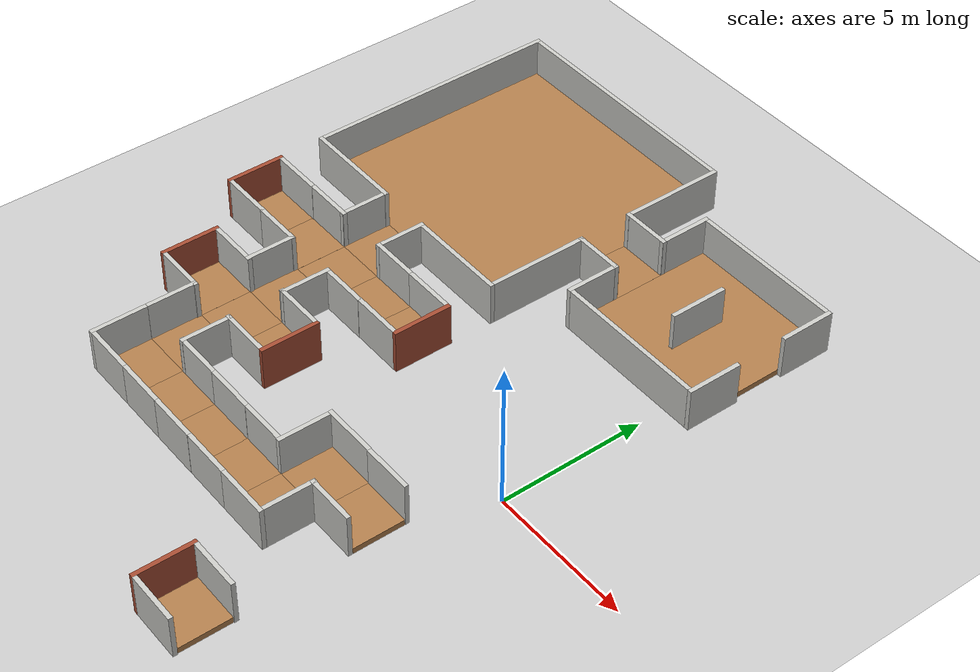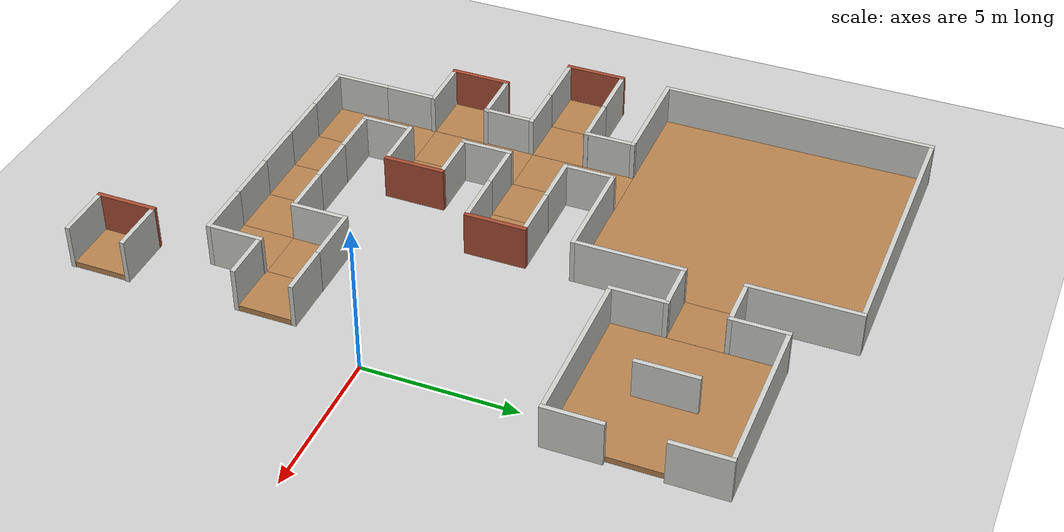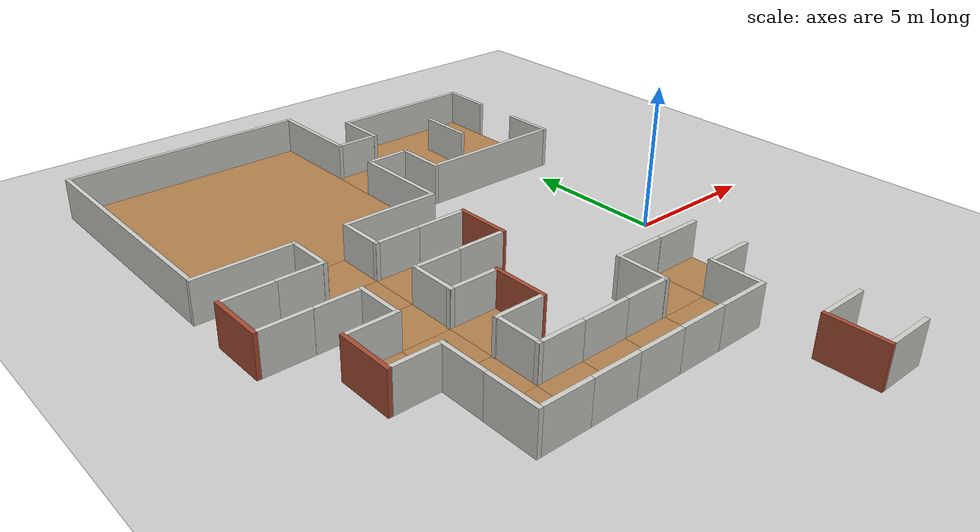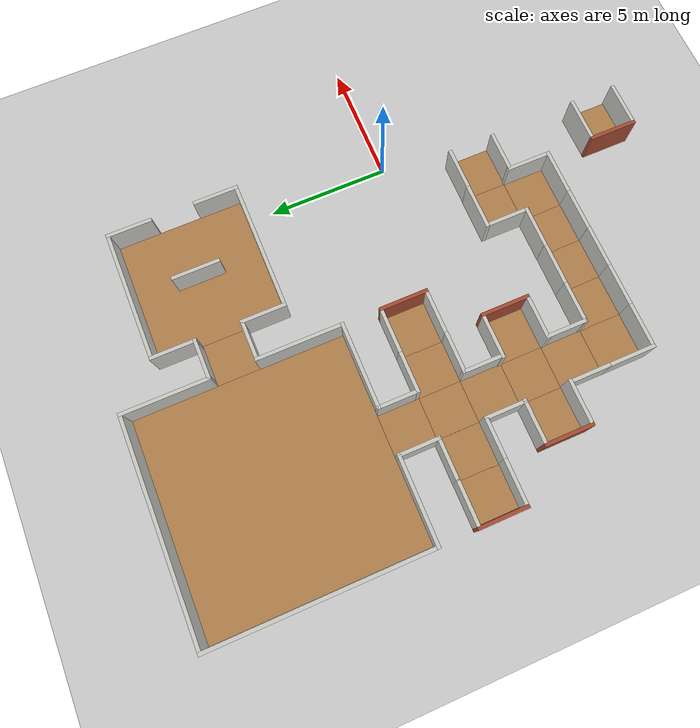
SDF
<sdf version="1.6">
 <world name="default">
  <model name="ground_plane">
   <static>1</static>
   <link name="link">
    <collision name="collision">
     <geometry><plane><normal>0 0 1</normal><size>100 100</size></plane></geometry>
     <surface><friction><ode><mu>100</mu><mu2>50</mu2></ode></friction></surface>
    </collision>
    <visual name="visual">
     <cast_shadows>0</cast_shadows>
     <geometry><plane><normal>0 0 1</normal><size>100 100</size></plane></geometry>
     <material>
      <script><uri>file://media/materials/scripts/gazebo.material</uri><name>Gazebo/Grey</name></script>
     </material>
    </visual>
   </link>
  </model>
  <model name="nerve_straight">
   <pose>-1.7845 -3.55503 0 0 0 -1.5708</pose>
   <link name="Wall_0">
    <collision name="Wall_0_Collision">
     <geometry><box><size>1.76 1.75 0.2</size></box></geometry>
     <pose>0 0 0.1 0 -0 0</pose>
    </collision>
    <visual name="Wall_0_Visual">
     <pose>0 0 0.1 0 -0 0</pose>
     <geometry><box><size>1.76 1.75 0.2</size></box></geometry>
     <material>
      <script><uri>file://media/materials/scripts/gazebo.material</uri><name>Gazebo/Wood</name></script>
      <ambient>1 0.764706 0.305882 1</ambient>
     </material>
    </visual>
    <pose>0.005 -0.002 0 0 -0 3.14159</pose>
   </link>
   <link name="Wall_2">
    <collision name="Wall_2_Collision">
     <geometry><box><size>1.75 0.15 1.5</size></box></geometry>
     <pose>0 0 0.75 0 -0 0</pose>
    </collision>
    <visual name="Wall_2_Visual">
     <pose>0 0 0.75 0 -0 0</pose>
     <geometry><box><size>1.75 0.15 1.5</size></box></geometry>
     <material>
      <script><uri>file://media/materials/scripts/gazebo.material</uri><name>Gazebo/CeilingTiled</name></script>
      <ambient>1 0.764706 0.305882 1</ambient>
     </material>
    </visual>
    <pose>-0.955 0.002 0 0 0 -1.5708</pose>
   </link>
   <link name="Wall_4">
    <collision name="Wall_4_Collision">
     <geometry><box><size>1.75 0.15 1.5</size></box></geometry>
     <pose>0 0 0.75 0 -0 0</pose>
    </collision>
    <visual name="Wall_4_Visual">
     <pose>0 0 0.75 0 -0 0</pose>
     <geometry><box><size>1.75 0.15 1.5</size></box></geometry>
     <material>
      <script><uri>file://media/materials/scripts/gazebo.material</uri><name>Gazebo/CeilingTiled</name></script>
      <ambient>1 0.764706 0.305882 1</ambient>
     </material>
    </visual>
    <pose>0.955 0.002 0 0 0 -1.5708</pose>
   </link>
   <static>1</static>
  </model>
  <model name="nerve_straight_clone_0">
   <pose>-5.29676 -5.28219 0 0 0 -1.5708</pose>
   <link name="Wall_0">
    <collision name="Wall_0_Collision">
     <geometry><box><size>1.76 1.75 0.2</size></box></geometry>
     <pose>0 0 0.1 0 -0 0</pose>
    </collision>
    <visual name="Wall_0_Visual">
     <pose>0 0 0.1 0 -0 0</pose>
     <geometry><box><size>1.76 1.75 0.2</size></box></geometry>
     <material>
      <script><uri>file://media/materials/scripts/gazebo.material</uri><name>Gazebo/Wood</name></script>
      <ambient>1 0.764706 0.305882 1</ambient>
     </material>
    </visual>
    <pose>0.005 -0.002 0 0 -0 3.14159</pose>
   </link>
   <link name="Wall_2">
    <collision name="Wall_2_Collision">
     <geometry><box><size>1.75 0.15 1.5</size></box></geometry>
     <pose>0 0 0.75 0 -0 0</pose>
    </collision>
    <visual name="Wall_2_Visual">
     <pose>0 0 0.75 0 -0 0</pose>
     <geometry><box><size>1.75 0.15 1.5</size></box></geometry>
     <material>
      <script><uri>file://media/materials/scripts/gazebo.material</uri><name>Gazebo/CeilingTiled</name></script>
      <ambient>1 0.764706 0.305882 1</ambient>
     </material>
    </visual>
    <pose>-0.955 0.002 0 0 0 -1.5708</pose>
   </link>
   <link name="Wall_4">
    <collision name="Wall_4_Collision">
     <geometry><box><size>1.75 0.15 1.5</size></box></geometry>
     <pose>0 0 0.75 0 -0 0</pose>
    </collision>
    <visual name="Wall_4_Visual">
     <pose>0 0 0.75 0 -0 0</pose>
     <geometry><box><size>1.75 0.15 1.5</size></box></geometry>
     <material>
      <script><uri>file://media/materials/scripts/gazebo.material</uri><name>Gazebo/CeilingTiled</name></script>
      <ambient>1 0.764706 0.305882 1</ambient>
     </material>
    </visual>
    <pose>0.955 0.002 0 0 0 -1.5708</pose>
   </link>
   <static>1</static>
  </model>
  <model name="nerve_room_5x5ARENA_right">
   <pose>-10.4798 8.71779 0 0 -0 1.57</pose>
   <link name="Wall_11">
    <collision name="Wall_11_Collision">
     <geometry><box><size>8.75 0.15 1.5</size></box></geometry>
     <pose>0 0 0.75 0 -0 0</pose>
    </collision>
    <visual name="Wall_11_Visual">
     <pose>0 0 0.75 0 -0 0</pose>
     <geometry><box><size>8.75 0.15 1.5</size></box></geometry>
     <material>
      <script><uri>file://media/materials/scripts/gazebo.material</uri><name>Gazebo/CeilingTiled</name></script>
      <ambient>1 0.764706 0.305882 1</ambient>
     </material>
    </visual>
    <pose>4.44912 -0.000431 0 0 0 -1.5708</pose>
   </link>
   <link name="Wall_13">
    <collision name="Wall_13_Collision">
     <geometry><box><size>3.65 0.15 1.5</size></box></geometry>
     <pose>0 0 0.75 0 -0 0</pose>
    </collision>
    <visual name="Wall_13_Visual">
     <pose>0 0 0.75 0 -0 0</pose>
     <geometry><box><size>3.65 0.15 1.5</size></box></geometry>
     <material>
      <script><uri>file://media/materials/scripts/gazebo.material</uri><name>Gazebo/CeilingTiled</name></script>
      <ambient>1 0.764706 0.305882 1</ambient>
     </material>
    </visual>
    <pose>-4.44961 2.70076 0 0 0 -1.5708</pose>
   </link>
   <link name="Wall_15">
    <collision name="Wall_15_Collision">
     <geometry><box><size>3.65 0.15 1.5</size></box></geometry>
     <pose>0 0 0.75 0 -0 0</pose>
    </collision>
    <visual name="Wall_15_Visual">
     <pose>0 0 0.75 0 -0 0</pose>
     <geometry><box><size>3.65 0.15 1.5</size></box></geometry>
     <material>
      <script><uri>file://media/materials/scripts/gazebo.material</uri><name>Gazebo/CeilingTiled</name></script>
      <ambient>1 0.764706 0.305882 1</ambient>
     </material>
    </visual>
    <pose>2.69961 -4.45076 0 0 -0 0</pose>
   </link>
   <link name="Wall_17">
    <collision name="Wall_17_Collision">
     <geometry><box><size>8.90028 0.15 1.5</size></box></geometry>
     <pose>0 0 0.75 0 -0 0</pose>
    </collision>
    <visual name="Wall_17_Visual">
     <pose>0 0 0.75 0 -0 0</pose>
     <geometry><box><size>8.90028 0.15 1.5</size></box></geometry>
     <material>
      <script><uri>file://media/materials/scripts/gazebo.material</uri><name>Gazebo/CeilingTiled</name></script>
      <ambient>1 0.764706 0.305882 1</ambient>
     </material>
    </visual>
    <pose>0.074346 4.45022 0 0 0 -6.5e-05</pose>
   </link>
   <link name="Wall_21">
    <collision name="Wall_21_Collision">
     <geometry><box><size>3.5 0.15 1.5</size></box></geometry>
     <pose>0 0 0.75 0 -0 0</pose>
    </collision>
    <visual name="Wall_21_Visual">
     <pose>0 0 0.75 0 -0 0</pose>
     <geometry><box><size>3.5 0.15 1.5</size></box></geometry>
     <material>
      <script><uri>file://media/materials/scripts/gazebo.material</uri><name>Gazebo/CeilingTiled</name></script>
      <ambient>1 0.764706 0.305882 1</ambient>
     </material>
    </visual>
    <pose>-2.62383 -4.4498 0 0 -0 0</pose>
   </link>
   <link name="Wall_25">
    <collision name="Wall_25_Collision">
     <geometry><box><size>3.65 0.15 1.5</size></box></geometry>
     <pose>0 0 0.75 0 -0 0</pose>
    </collision>
    <visual name="Wall_25_Visual">
     <pose>0 0 0.75 0 -0 0</pose>
     <geometry><box><size>3.65 0.15 1.5</size></box></geometry>
     <material>
      <script><uri>file://media/materials/scripts/gazebo.material</uri><name>Gazebo/CeilingTiled</name></script>
      <ambient>1 0.764706 0.305882 1</ambient>
     </material>
    </visual>
    <pose>-4.44941 -2.70044 0 0 0 -1.5708</pose>
   </link>
   <link name="Wall_6">
    <collision name="Wall_6_Collision">
     <geometry><box><size>8.76 8.75 0.2</size></box></geometry>
     <pose>0 0 0.1 0 -0 0</pose>
    </collision>
    <visual name="Wall_6_Visual">
     <pose>0 0 0.1 0 -0 0</pose>
     <geometry><box><size>8.76 8.75 0.2</size></box></geometry>
     <material>
      <script><uri>file://media/materials/scripts/gazebo.material</uri><name>Gazebo/Wood</name></script>
      <ambient>1 0.764706 0.305882 1</ambient>
     </material>
    </visual>
    <pose>0.000485 -0.004173 0 0 -0 1.5708</pose>
   </link>
   <static>1</static>
  </model>
  <model name="nerve_straight_clone_0_clone_clone_0">
   <pose>-10.4881 3.47237 0 0 -0 3.14159</pose>
   <link name="Wall_0">
    <collision name="Wall_0_Collision">
     <geometry><box><size>1.76 1.75 0.2</size></box></geometry>
     <pose>0 0 0.1 0 -0 0</pose>
    </collision>
    <visual name="Wall_0_Visual">
     <pose>0 0 0.1 0 -0 0</pose>
     <geometry><box><size>1.76 1.75 0.2</size></box></geometry>
     <material>
      <script><uri>file://media/materials/scripts/gazebo.material</uri><name>Gazebo/Wood</name></script>
      <ambient>1 0.764706 0.305882 1</ambient>
     </material>
    </visual>
    <pose>0.005 -0.002 0 0 -0 3.14159</pose>
   </link>
   <link name="Wall_2">
    <collision name="Wall_2_Collision">
     <geometry><box><size>1.75 0.15 1.5</size></box></geometry>
     <pose>0 0 0.75 0 -0 0</pose>
    </collision>
    <visual name="Wall_2_Visual">
     <pose>0 0 0.75 0 -0 0</pose>
     <geometry><box><size>1.75 0.15 1.5</size></box></geometry>
     <material>
      <script><uri>file://media/materials/scripts/gazebo.material</uri><name>Gazebo/CeilingTiled</name></script>
      <ambient>1 0.764706 0.305882 1</ambient>
     </material>
    </visual>
    <pose>-0.955 0.002 0 0 0 -1.5708</pose>
   </link>
   <link name="Wall_4">
    <collision name="Wall_4_Collision">
     <geometry><box><size>1.75 0.15 1.5</size></box></geometry>
     <pose>0 0 0.75 0 -0 0</pose>
    </collision>
    <visual name="Wall_4_Visual">
     <pose>0 0 0.75 0 -0 0</pose>
     <geometry><box><size>1.75 0.15 1.5</size></box></geometry>
     <material>
      <script><uri>file://media/materials/scripts/gazebo.material</uri><name>Gazebo/CeilingTiled</name></script>
      <ambient>1 0.764706 0.305882 1</ambient>
     </material>
    </visual>
    <pose>0.955 0.002 0 0 0 -1.5708</pose>
   </link>
   <static>1</static>
  </model>
  <model name="nerve_room_3x3_split">
   <pose>-1.72967 8.71628 0 0 0 -1.5708</pose>
   <link name="Wall_11">
    <collision name="Wall_11_Collision">
     <geometry><box><size>5.25 0.15 1.5</size></box></geometry>
     <pose>0 0 0.75 0 -0 0</pose>
    </collision>
    <visual name="Wall_11_Visual">
     <pose>0 0 0.75 0 -0 0</pose>
     <geometry><box><size>5.25 0.15 1.5</size></box></geometry>
     <material>
      <script><uri>file://media/materials/scripts/gazebo.material</uri><name>Gazebo/CeilingTiled</name></script>
      <ambient>1 0.764706 0.305882 1</ambient>
     </material>
    </visual>
    <pose>-2.69653 -0.003278 0 0 0 -1.5708</pose>
   </link>
   <link name="Wall_13">
    <collision name="Wall_13_Collision">
     <geometry><box><size>5.25 0.15 1.5</size></box></geometry>
     <pose>0 0 0.75 0 -0 0</pose>
    </collision>
    <visual name="Wall_13_Visual">
     <pose>0 0 0.75 0 -0 0</pose>
     <geometry><box><size>5.25 0.15 1.5</size></box></geometry>
     <material>
      <script><uri>file://media/materials/scripts/gazebo.material</uri><name>Gazebo/CeilingTiled</name></script>
      <ambient>1 0.764706 0.305882 1</ambient>
     </material>
    </visual>
    <pose>2.69688 -0.000452 0 0 0 -1.5708</pose>
   </link>
   <link name="Wall_15">
    <collision name="Wall_15_Collision">
     <geometry><box><size>1.9 0.15 1.5</size></box></geometry>
     <pose>0 0 0.75 0 -0 0</pose>
    </collision>
    <visual name="Wall_15_Visual">
     <pose>0 0 0.75 0 -0 0</pose>
     <geometry><box><size>1.9 0.15 1.5</size></box></geometry>
     <material>
      <script><uri>file://media/materials/scripts/gazebo.material</uri><name>Gazebo/CeilingTiled</name></script>
      <ambient>1 0.764706 0.305882 1</ambient>
     </material>
    </visual>
    <pose>-1.82279 -2.70217 0 0 -0 0</pose>
   </link>
   <link name="Wall_17">
    <collision name="Wall_17_Collision">
     <geometry><box><size>1.9 0.15 1.5</size></box></geometry>
     <pose>0 0 0.75 0 -0 0</pose>
    </collision>
    <visual name="Wall_17_Visual">
     <pose>0 0 0.75 0 -0 0</pose>
     <geometry><box><size>1.9 0.15 1.5</size></box></geometry>
     <material>
      <script><uri>file://media/materials/scripts/gazebo.material</uri><name>Gazebo/CeilingTiled</name></script>
      <ambient>1 0.764706 0.305882 1</ambient>
     </material>
    </visual>
    <pose>-1.82219 2.69878 0 0 -0 0</pose>
   </link>
   <link name="Wall_19">
    <collision name="Wall_19_Collision">
     <geometry><box><size>1.9 0.15 1.5</size></box></geometry>
     <pose>0 0 0.75 0 -0 0</pose>
    </collision>
    <visual name="Wall_19_Visual">
     <pose>0 0 0.75 0 -0 0</pose>
     <geometry><box><size>1.9 0.15 1.5</size></box></geometry>
     <material>
      <script><uri>file://media/materials/scripts/gazebo.material</uri><name>Gazebo/CeilingTiled</name></script>
      <ambient>1 0.764706 0.305882 1</ambient>
     </material>
    </visual>
    <pose>1.82194 2.70217 0 0 -0 0</pose>
   </link>
   <link name="Wall_21">
    <collision name="Wall_21_Collision">
     <geometry><box><size>1.9 0.15 1.5</size></box></geometry>
     <pose>0 0 0.75 0 -0 0</pose>
    </collision>
    <visual name="Wall_21_Visual">
     <pose>0 0 0.75 0 -0 0</pose>
     <geometry><box><size>1.9 0.15 1.5</size></box></geometry>
     <material>
      <script><uri>file://media/materials/scripts/gazebo.material</uri><name>Gazebo/CeilingTiled</name></script>
      <ambient>1 0.764706 0.305882 1</ambient>
     </material>
    </visual>
    <pose>1.82279 -2.70173 0 0 -0 0</pose>
   </link>
   <link name="Wall_23">
    <collision name="Wall_23_Collision">
     <geometry><box><size>2 0.15 1.5</size></box></geometry>
     <pose>0 0 0.75 0 -0 0</pose>
    </collision>
    <visual name="Wall_23_Visual">
     <pose>0 0 0.75 0 -0 0</pose>
     <geometry><box><size>2 0.15 1.5</size></box></geometry>
     <material>
      <script><uri>file://media/materials/scripts/gazebo.material</uri><name>Gazebo/CeilingTiled</name></script>
      <ambient>1 0.764706 0.305882 1</ambient>
     </material>
    </visual>
    <pose>0.033144 0.01482 0 0 -0 0</pose>
   </link>
   <link name="Wall_6">
    <collision name="Wall_6_Collision">
     <geometry><box><size>5.26 5.25 0.2</size></box></geometry>
     <pose>0 0 0.1 0 -0 0</pose>
    </collision>
    <visual name="Wall_6_Visual">
     <pose>0 0 0.1 0 -0 0</pose>
     <geometry><box><size>5.26 5.25 0.2</size></box></geometry>
     <material>
      <script><uri>file://media/materials/scripts/gazebo.material</uri><name>Gazebo/Wood</name></script>
      <ambient>1 0.764706 0.305882 1</ambient>
     </material>
    </visual>
    <pose>-0.001194 0.003047 0 0 -0 1.5708</pose>
   </link>
   <static>1</static>
  </model>
  <model name="nerve_straight_clone_0_clone_0_clone_0">
   <pose>-5.22994 8.71415 0 0 0 -1.5708</pose>
   <link name="Wall_0">
    <collision name="Wall_0_Collision">
     <geometry><box><size>1.76 1.75 0.2</size></box></geometry>
     <pose>0 0 0.1 0 -0 0</pose>
    </collision>
    <visual name="Wall_0_Visual">
     <pose>0 0 0.1 0 -0 0</pose>
     <geometry><box><size>1.76 1.75 0.2</size></box></geometry>
     <material>
      <script><uri>file://media/materials/scripts/gazebo.material</uri><name>Gazebo/Wood</name></script>
      <ambient>1 0.764706 0.305882 1</ambient>
     </material>
    </visual>
    <pose>0.005 -0.002 0 0 -0 3.14159</pose>
   </link>
   <link name="Wall_2">
    <collision name="Wall_2_Collision">
     <geometry><box><size>1.75 0.15 1.5</size></box></geometry>
     <pose>0 0 0.75 0 -0 0</pose>
    </collision>
    <visual name="Wall_2_Visual">
     <pose>0 0 0.75 0 -0 0</pose>
     <geometry><box><size>1.75 0.15 1.5</size></box></geometry>
     <material>
      <script><uri>file://media/materials/scripts/gazebo.material</uri><name>Gazebo/CeilingTiled</name></script>
      <ambient>1 0.764706 0.305882 1</ambient>
     </material>
    </visual>
    <pose>-0.955 0.002 0 0 0 -1.5708</pose>
   </link>
   <link name="Wall_4">
    <collision name="Wall_4_Collision">
     <geometry><box><size>1.75 0.15 1.5</size></box></geometry>
     <pose>0 0 0.75 0 -0 0</pose>
    </collision>
    <visual name="Wall_4_Visual">
     <pose>0 0 0.75 0 -0 0</pose>
     <geometry><box><size>1.75 0.15 1.5</size></box></geometry>
     <material>
      <script><uri>file://media/materials/scripts/gazebo.material</uri><name>Gazebo/CeilingTiled</name></script>
      <ambient>1 0.764706 0.305882 1</ambient>
     </material>
    </visual>
    <pose>0.955 0.002 0 0 0 -1.5708</pose>
   </link>
   <static>1</static>
  </model>
  <model name="nerve_end_clone_clone_clone">
   <pose>-1.78823 -9.18731 0 0 -0 1.5708</pose>
   <link name="Wall_0">
    <collision name="Wall_0_Collision">
     <geometry><box><size>1.76 1.75 0.2</size></box></geometry>
     <pose>0 0 0.1 0 -0 0</pose>
    </collision>
    <visual name="Wall_0_Visual">
     <pose>0 0 0.1 0 -0 0</pose>
     <geometry><box><size>1.76 1.75 0.2</size></box></geometry>
     <material>
      <script><uri>file://media/materials/scripts/gazebo.material</uri><name>Gazebo/Wood</name></script>
      <ambient>1 0.764706 0.305882 1</ambient>
     </material>
    </visual>
    <pose>-0.009 -0.064 0 0 -0 0</pose>
   </link>
   <link name="Wall_2">
    <collision name="Wall_2_Collision">
     <geometry><box><size>1.8 0.15 1.5</size></box></geometry>
     <pose>0 0 0.75 0 -0 0</pose>
    </collision>
    <visual name="Wall_2_Visual">
     <pose>0 0 0.75 0 -0 0</pose>
     <geometry><box><size>1.8 0.15 1.5</size></box></geometry>
     <material>
      <script><uri>file://media/materials/scripts/gazebo.material</uri><name>Gazebo/CeilingTiled</name></script>
      <ambient>1 0.764706 0.305882 1</ambient>
     </material>
    </visual>
    <pose>-0.95 -0.065 0 0 0 -1.5708</pose>
   </link>
   <link name="Wall_4">
    <collision name="Wall_4_Collision">
     <geometry><box><size>1.8 0.15 1.5</size></box></geometry>
     <pose>0 0 0.75 0 -0 0</pose>
    </collision>
    <visual name="Wall_4_Visual">
     <pose>0 0 0.75 0 -0 0</pose>
     <geometry><box><size>1.8 0.15 1.5</size></box></geometry>
     <material>
      <script><uri>file://media/materials/scripts/gazebo.material</uri><name>Gazebo/CeilingTiled</name></script>
      <ambient>1 0.764706 0.305882 1</ambient>
     </material>
    </visual>
    <pose>0.95 -0.065 0 0 0 -1.5708</pose>
   </link>
   <link name="Wall_6">
    <collision name="Wall_6_Collision">
     <geometry><box><size>2.05 0.15 1.5</size></box></geometry>
     <pose>0 0 0.75 0 -0 0</pose>
    </collision>
    <visual name="Wall_6_Visual">
     <pose>0 0 0.75 0 -0 0</pose>
     <geometry><box><size>2.05 0.15 1.5</size></box></geometry>
     <material>
      <script><uri>file://media/materials/scripts/gazebo.material</uri><name>Gazebo/Bricks</name></script>
      <ambient>0.996078 0.47451 0.0196078 1</ambient>
     </material>
    </visual>
    <pose>0 0.89 0 0 -0 0</pose>
   </link>
   <static>1</static>
  </model>
  <model name="nerve_corner_clone_clone">
   <pose>-3.47853 -5.36113 0 0 0 -3.14159</pose>
   <link name="Wall_0">
    <collision name="Wall_0_Collision">
     <geometry><box><size>1.76 1.75 0.2</size></box></geometry>
     <pose>0 0 0.1 0 -0 0</pose>
    </collision>
    <visual name="Wall_0_Visual">
     <pose>0 0 0.1 0 -0 0</pose>
     <geometry><box><size>1.76 1.75 0.2</size></box></geometry>
     <material>
      <script><uri>file://media/materials/scripts/gazebo.material</uri><name>Gazebo/Wood</name></script>
      <ambient>1 0.764706 0.305882 1</ambient>
     </material>
    </visual>
    <pose>0.077507 -0.077007 0 0 -0 3.14159</pose>
   </link>
   <link name="Wall_2">
    <collision name="Wall_2_Collision">
     <geometry><box><size>1.75 0.15 1.5</size></box></geometry>
     <pose>0 0 0.75 0 -0 0</pose>
    </collision>
    <visual name="Wall_2_Visual">
     <pose>0 0 0.75 0 -0 0</pose>
     <geometry><box><size>1.75 0.15 1.5</size></box></geometry>
     <material>
      <script><uri>file://media/materials/scripts/gazebo.material</uri><name>Gazebo/CeilingTiled</name></script>
      <ambient>1 0.764706 0.305882 1</ambient>
     </material>
    </visual>
    <pose>-0.882493 -0.073007 0 0 0 -1.5708</pose>
   </link>
   <link name="Wall_4">
    <collision name="Wall_4_Collision">
     <geometry><box><size>1.91042 0.15 1.5</size></box></geometry>
     <pose>0 0 0.75 0 -0 0</pose>
    </collision>
    <visual name="Wall_4_Visual">
     <pose>0 0 0.75 0 -0 0</pose>
     <geometry><box><size>1.91042 0.15 1.5</size></box></geometry>
     <material>
      <script><uri>file://media/materials/scripts/gazebo.material</uri><name>Gazebo/CeilingTiled</name></script>
      <ambient>1 0.764706 0.305882 1</ambient>
     </material>
    </visual>
    <pose>-0.002284 0.876825 0 0 -0 3.1414</pose>
   </link>
   <static>1</static>
  </model>
  <model name="nerve_end_clone_clone_clone_1">
   <pose>-6.94342 1.72067 0 0 0 -1.57079</pose>
   <link name="Wall_0">
    <collision name="Wall_0_Collision">
     <geometry><box><size>1.76 1.75 0.2</size></box></geometry>
     <pose>0 0 0.1 0 -0 0</pose>
    </collision>
    <visual name="Wall_0_Visual">
     <pose>0 0 0.1 0 -0 0</pose>
     <geometry><box><size>1.76 1.75 0.2</size></box></geometry>
     <material>
      <script><uri>file://media/materials/scripts/gazebo.material</uri><name>Gazebo/Wood</name></script>
      <ambient>1 0.764706 0.305882 1</ambient>
     </material>
    </visual>
    <pose>-0.009 -0.064 0 0 -0 0</pose>
   </link>
   <link name="Wall_2">
    <collision name="Wall_2_Collision">
     <geometry><box><size>1.8 0.15 1.5</size></box></geometry>
     <pose>0 0 0.75 0 -0 0</pose>
    </collision>
    <visual name="Wall_2_Visual">
     <pose>0 0 0.75 0 -0 0</pose>
     <geometry><box><size>1.8 0.15 1.5</size></box></geometry>
     <material>
      <script><uri>file://media/materials/scripts/gazebo.material</uri><name>Gazebo/CeilingTiled</name></script>
      <ambient>1 0.764706 0.305882 1</ambient>
     </material>
    </visual>
    <pose>-0.95 -0.065 0 0 0 -1.5708</pose>
   </link>
   <link name="Wall_4">
    <collision name="Wall_4_Collision">
     <geometry><box><size>1.8 0.15 1.5</size></box></geometry>
     <pose>0 0 0.75 0 -0 0</pose>
    </collision>
    <visual name="Wall_4_Visual">
     <pose>0 0 0.75 0 -0 0</pose>
     <geometry><box><size>1.8 0.15 1.5</size></box></geometry>
     <material>
      <script><uri>file://media/materials/scripts/gazebo.material</uri><name>Gazebo/CeilingTiled</name></script>
      <ambient>1 0.764706 0.305882 1</ambient>
     </material>
    </visual>
    <pose>0.95 -0.065 0 0 0 -1.5708</pose>
   </link>
   <link name="Wall_6">
    <collision name="Wall_6_Collision">
     <geometry><box><size>2.05 0.15 1.5</size></box></geometry>
     <pose>0 0 0.75 0 -0 0</pose>
    </collision>
    <visual name="Wall_6_Visual">
     <pose>0 0 0.75 0 -0 0</pose>
     <geometry><box><size>2.05 0.15 1.5</size></box></geometry>
     <material>
      <script><uri>file://media/materials/scripts/gazebo.material</uri><name>Gazebo/Bricks</name></script>
      <ambient>0.996078 0.47451 0.0196078 1</ambient>
     </material>
    </visual>
    <pose>0 0.89 0 0 -0 0</pose>
   </link>
   <static>1</static>
  </model>
  <model name="nerve_end_clone_clone_clone_2">
   <pose>-14.0282 1.72032 0 0 -0 1.5708</pose>
   <link name="Wall_0">
    <collision name="Wall_0_Collision">
     <geometry><box><size>1.76 1.75 0.2</size></box></geometry>
     <pose>0 0 0.1 0 -0 0</pose>
    </collision>
    <visual name="Wall_0_Visual">
     <pose>0 0 0.1 0 -0 0</pose>
     <geometry><box><size>1.76 1.75 0.2</size></box></geometry>
     <material>
      <script><uri>file://media/materials/scripts/gazebo.material</uri><name>Gazebo/Wood</name></script>
      <ambient>1 0.764706 0.305882 1</ambient>
     </material>
    </visual>
    <pose>-0.009 -0.064 0 0 -0 0</pose>
   </link>
   <link name="Wall_2">
    <collision name="Wall_2_Collision">
     <geometry><box><size>1.8 0.15 1.5</size></box></geometry>
     <pose>0 0 0.75 0 -0 0</pose>
    </collision>
    <visual name="Wall_2_Visual">
     <pose>0 0 0.75 0 -0 0</pose>
     <geometry><box><size>1.8 0.15 1.5</size></box></geometry>
     <material>
      <script><uri>file://media/materials/scripts/gazebo.material</uri><name>Gazebo/CeilingTiled</name></script>
      <ambient>1 0.764706 0.305882 1</ambient>
     </material>
    </visual>
    <pose>-0.95 -0.065 0 0 0 -1.5708</pose>
   </link>
   <link name="Wall_4">
    <collision name="Wall_4_Collision">
     <geometry><box><size>1.8 0.15 1.5</size></box></geometry>
     <pose>0 0 0.75 0 -0 0</pose>
    </collision>
    <visual name="Wall_4_Visual">
     <pose>0 0 0.75 0 -0 0</pose>
     <geometry><box><size>1.8 0.15 1.5</size></box></geometry>
     <material>
      <script><uri>file://media/materials/scripts/gazebo.material</uri><name>Gazebo/CeilingTiled</name></script>
      <ambient>1 0.764706 0.305882 1</ambient>
     </material>
    </visual>
    <pose>0.95 -0.065 0 0 0 -1.5708</pose>
   </link>
   <link name="Wall_6">
    <collision name="Wall_6_Collision">
     <geometry><box><size>2.05 0.15 1.5</size></box></geometry>
     <pose>0 0 0.75 0 -0 0</pose>
    </collision>
    <visual name="Wall_6_Visual">
     <pose>0 0 0.75 0 -0 0</pose>
     <geometry><box><size>2.05 0.15 1.5</size></box></geometry>
     <material>
      <script><uri>file://media/materials/scripts/gazebo.material</uri><name>Gazebo/Bricks</name></script>
      <ambient>0.996078 0.47451 0.0196078 1</ambient>
     </material>
    </visual>
    <pose>0 0.89 0 0 -0 0</pose>
   </link>
   <static>1</static>
  </model>
  <model name="nerve_straight_clone_0_clone_clone_0_clone">
   <pose>-10.4958 -0.031806 0 0 -0 3.14159</pose>
   <link name="Wall_0">
    <collision name="Wall_0_Collision">
     <geometry><box><size>1.76 1.75 0.2</size></box></geometry>
     <pose>0 0 0.1 0 -0 0</pose>
    </collision>
    <visual name="Wall_0_Visual">
     <pose>0 0 0.1 0 -0 0</pose>
     <geometry><box><size>1.76 1.75 0.2</size></box></geometry>
     <material>
      <script><uri>file://media/materials/scripts/gazebo.material</uri><name>Gazebo/Wood</name></script>
      <ambient>1 0.764706 0.305882 1</ambient>
     </material>
    </visual>
    <pose>0.005 -0.002 0 0 -0 3.14159</pose>
   </link>
   <link name="Wall_2">
    <collision name="Wall_2_Collision">
     <geometry><box><size>1.75 0.15 1.5</size></box></geometry>
     <pose>0 0 0.75 0 -0 0</pose>
    </collision>
    <visual name="Wall_2_Visual">
     <pose>0 0 0.75 0 -0 0</pose>
     <geometry><box><size>1.75 0.15 1.5</size></box></geometry>
     <material>
      <script><uri>file://media/materials/scripts/gazebo.material</uri><name>Gazebo/CeilingTiled</name></script>
      <ambient>1 0.764706 0.305882 1</ambient>
     </material>
    </visual>
    <pose>-0.955 0.002 0 0 0 -1.5708</pose>
   </link>
   <link name="Wall_4">
    <collision name="Wall_4_Collision">
     <geometry><box><size>1.75 0.15 1.5</size></box></geometry>
     <pose>0 0 0.75 0 -0 0</pose>
    </collision>
    <visual name="Wall_4_Visual">
     <pose>0 0 0.75 0 -0 0</pose>
     <geometry><box><size>1.75 0.15 1.5</size></box></geometry>
     <material>
      <script><uri>file://media/materials/scripts/gazebo.material</uri><name>Gazebo/CeilingTiled</name></script>
      <ambient>1 0.764706 0.305882 1</ambient>
     </material>
    </visual>
    <pose>0.955 0.002 0 0 0 -1.5708</pose>
   </link>
   <static>1</static>
  </model>
  <model name="nerve_platform">
   <pose>-10.4862 1.72399 0 0 -0 0</pose>
   <link name="Wall_6">
    <collision name="Wall_6_Collision">
     <geometry><box><size>1.76 1.75 0.2</size></box></geometry>
     <pose>0 0 0.1 0 -0 0</pose>
    </collision>
    <visual name="Wall_6_Visual">
     <pose>0 0 0.1 0 -0 0</pose>
     <geometry><box><size>1.76 1.75 0.2</size></box></geometry>
     <material>
      <script><uri>file://media/materials/scripts/gazebo.material</uri><name>Gazebo/Wood</name></script>
      <ambient>1 0.764706 0.305882 1</ambient>
     </material>
    </visual>
    <pose>0 0 0 0 -0 1.5708</pose>
   </link>
   <static>1</static>
  </model>
  <model name="nerve_platform_clone">
   <pose>-10.4995 -1.78106 0 0 -0 0</pose>
   <link name="Wall_6">
    <collision name="Wall_6_Collision">
     <geometry><box><size>1.76 1.75 0.2</size></box></geometry>
     <pose>0 0 0.1 0 -0 0</pose>
    </collision>
    <visual name="Wall_6_Visual">
     <pose>0 0 0.1 0 -0 0</pose>
     <geometry><box><size>1.76 1.75 0.2</size></box></geometry>
     <material>
      <script><uri>file://media/materials/scripts/gazebo.material</uri><name>Gazebo/Wood</name></script>
      <ambient>1 0.764706 0.305882 1</ambient>
     </material>
    </visual>
    <pose>0 0 0 0 -0 1.5708</pose>
   </link>
   <static>1</static>
  </model>
  <model name="nerve_end_clone_clone_clone_1_clone">
   <pose>-8.68908 -1.78199 0 0 0 -1.57079</pose>
   <link name="Wall_0">
    <collision name="Wall_0_Collision">
     <geometry><box><size>1.76 1.75 0.2</size></box></geometry>
     <pose>0 0 0.1 0 -0 0</pose>
    </collision>
    <visual name="Wall_0_Visual">
     <pose>0 0 0.1 0 -0 0</pose>
     <geometry><box><size>1.76 1.75 0.2</size></box></geometry>
     <material>
      <script><uri>file://media/materials/scripts/gazebo.material</uri><name>Gazebo/Wood</name></script>
      <ambient>1 0.764706 0.305882 1</ambient>
     </material>
    </visual>
    <pose>-0.009 -0.064 0 0 -0 0</pose>
   </link>
   <link name="Wall_2">
    <collision name="Wall_2_Collision">
     <geometry><box><size>1.8 0.15 1.5</size></box></geometry>
     <pose>0 0 0.75 0 -0 0</pose>
    </collision>
    <visual name="Wall_2_Visual">
     <pose>0 0 0.75 0 -0 0</pose>
     <geometry><box><size>1.8 0.15 1.5</size></box></geometry>
     <material>
      <script><uri>file://media/materials/scripts/gazebo.material</uri><name>Gazebo/CeilingTiled</name></script>
      <ambient>1 0.764706 0.305882 1</ambient>
     </material>
    </visual>
    <pose>-0.95 -0.065 0 0 0 -1.5708</pose>
   </link>
   <link name="Wall_4">
    <collision name="Wall_4_Collision">
     <geometry><box><size>1.8 0.15 1.5</size></box></geometry>
     <pose>0 0 0.75 0 -0 0</pose>
    </collision>
    <visual name="Wall_4_Visual">
     <pose>0 0 0.75 0 -0 0</pose>
     <geometry><box><size>1.8 0.15 1.5</size></box></geometry>
     <material>
      <script><uri>file://media/materials/scripts/gazebo.material</uri><name>Gazebo/CeilingTiled</name></script>
      <ambient>1 0.764706 0.305882 1</ambient>
     </material>
    </visual>
    <pose>0.95 -0.065 0 0 0 -1.5708</pose>
   </link>
   <link name="Wall_6">
    <collision name="Wall_6_Collision">
     <geometry><box><size>2.05 0.15 1.5</size></box></geometry>
     <pose>0 0 0.75 0 -0 0</pose>
    </collision>
    <visual name="Wall_6_Visual">
     <pose>0 0 0.75 0 -0 0</pose>
     <geometry><box><size>2.05 0.15 1.5</size></box></geometry>
     <material>
      <script><uri>file://media/materials/scripts/gazebo.material</uri><name>Gazebo/Bricks</name></script>
      <ambient>0.996078 0.47451 0.0196078 1</ambient>
     </material>
    </visual>
    <pose>0 0.89 0 0 -0 0</pose>
   </link>
   <static>1</static>
  </model>
  <model name="nerve_end_clone_clone_clone_2_clone">
   <pose>-12.3141 -1.78447 0 0 -0 1.5708</pose>
   <link name="Wall_0">
    <collision name="Wall_0_Collision">
     <geometry><box><size>1.76 1.75 0.2</size></box></geometry>
     <pose>0 0 0.1 0 -0 0</pose>
    </collision>
    <visual name="Wall_0_Visual">
     <pose>0 0 0.1 0 -0 0</pose>
     <geometry><box><size>1.76 1.75 0.2</size></box></geometry>
     <material>
      <script><uri>file://media/materials/scripts/gazebo.material</uri><name>Gazebo/Wood</name></script>
      <ambient>1 0.764706 0.305882 1</ambient>
     </material>
    </visual>
    <pose>-0.009 -0.064 0 0 -0 0</pose>
   </link>
   <link name="Wall_2">
    <collision name="Wall_2_Collision">
     <geometry><box><size>1.8 0.15 1.5</size></box></geometry>
     <pose>0 0 0.75 0 -0 0</pose>
    </collision>
    <visual name="Wall_2_Visual">
     <pose>0 0 0.75 0 -0 0</pose>
     <geometry><box><size>1.8 0.15 1.5</size></box></geometry>
     <material>
      <script><uri>file://media/materials/scripts/gazebo.material</uri><name>Gazebo/CeilingTiled</name></script>
      <ambient>1 0.764706 0.305882 1</ambient>
     </material>
    </visual>
    <pose>-0.95 -0.065 0 0 0 -1.5708</pose>
   </link>
   <link name="Wall_4">
    <collision name="Wall_4_Collision">
     <geometry><box><size>1.8 0.15 1.5</size></box></geometry>
     <pose>0 0 0.75 0 -0 0</pose>
    </collision>
    <visual name="Wall_4_Visual">
     <pose>0 0 0.75 0 -0 0</pose>
     <geometry><box><size>1.8 0.15 1.5</size></box></geometry>
     <material>
      <script><uri>file://media/materials/scripts/gazebo.material</uri><name>Gazebo/CeilingTiled</name></script>
      <ambient>1 0.764706 0.305882 1</ambient>
     </material>
    </visual>
    <pose>0.95 -0.065 0 0 0 -1.5708</pose>
   </link>
   <link name="Wall_6">
    <collision name="Wall_6_Collision">
     <geometry><box><size>2.05 0.15 1.5</size></box></geometry>
     <pose>0 0 0.75 0 -0 0</pose>
    </collision>
    <visual name="Wall_6_Visual">
     <pose>0 0 0.75 0 -0 0</pose>
     <geometry><box><size>2.05 0.15 1.5</size></box></geometry>
     <material>
      <script><uri>file://media/materials/scripts/gazebo.material</uri><name>Gazebo/Bricks</name></script>
      <ambient>0.996078 0.47451 0.0196078 1</ambient>
     </material>
    </visual>
    <pose>0 0.89 0 0 -0 0</pose>
   </link>
   <static>1</static>
  </model>
  <model name="nerve_straight_clone_0_clone_clone_1">
   <pose>-10.499 -3.53303 0 0 -0 3.14159</pose>
   <link name="Wall_0">
    <collision name="Wall_0_Collision">
     <geometry><box><size>1.76 1.75 0.2</size></box></geometry>
     <pose>0 0 0.1 0 -0 0</pose>
    </collision>
    <visual name="Wall_0_Visual">
     <pose>0 0 0.1 0 -0 0</pose>
     <geometry><box><size>1.76 1.75 0.2</size></box></geometry>
     <material>
      <script><uri>file://media/materials/scripts/gazebo.material</uri><name>Gazebo/Wood</name></script>
      <ambient>1 0.764706 0.305882 1</ambient>
     </material>
    </visual>
    <pose>0.005 -0.002 0 0 -0 3.14159</pose>
   </link>
   <link name="Wall_2">
    <collision name="Wall_2_Collision">
     <geometry><box><size>1.75 0.15 1.5</size></box></geometry>
     <pose>0 0 0.75 0 -0 0</pose>
    </collision>
    <visual name="Wall_2_Visual">
     <pose>0 0 0.75 0 -0 0</pose>
     <geometry><box><size>1.75 0.15 1.5</size></box></geometry>
     <material>
      <script><uri>file://media/materials/scripts/gazebo.material</uri><name>Gazebo/CeilingTiled</name></script>
      <ambient>1 0.764706 0.305882 1</ambient>
     </material>
    </visual>
    <pose>-0.955 0.002 0 0 0 -1.5708</pose>
   </link>
   <link name="Wall_4">
    <collision name="Wall_4_Collision">
     <geometry><box><size>1.75 0.15 1.5</size></box></geometry>
     <pose>0 0 0.75 0 -0 0</pose>
    </collision>
    <visual name="Wall_4_Visual">
     <pose>0 0 0.75 0 -0 0</pose>
     <geometry><box><size>1.75 0.15 1.5</size></box></geometry>
     <material>
      <script><uri>file://media/materials/scripts/gazebo.material</uri><name>Gazebo/CeilingTiled</name></script>
      <ambient>1 0.764706 0.305882 1</ambient>
     </material>
    </visual>
    <pose>0.955 0.002 0 0 0 -1.5708</pose>
   </link>
   <static>1</static>
  </model>
  <model name="nerve_corner_clone_clone_clone">
   <pose>-10.5801 -5.35805 0 0 -0 1.5708</pose>
   <link name="Wall_0">
    <collision name="Wall_0_Collision">
     <geometry><box><size>1.76 1.75 0.2</size></box></geometry>
     <pose>0 0 0.1 0 -0 0</pose>
    </collision>
    <visual name="Wall_0_Visual">
     <pose>0 0 0.1 0 -0 0</pose>
     <geometry><box><size>1.76 1.75 0.2</size></box></geometry>
     <material>
      <script><uri>file://media/materials/scripts/gazebo.material</uri><name>Gazebo/Wood</name></script>
      <ambient>1 0.764706 0.305882 1</ambient>
     </material>
    </visual>
    <pose>0.077507 -0.077007 0 0 -0 3.14159</pose>
   </link>
   <link name="Wall_2">
    <collision name="Wall_2_Collision">
     <geometry><box><size>1.75 0.15 1.5</size></box></geometry>
     <pose>0 0 0.75 0 -0 0</pose>
    </collision>
    <visual name="Wall_2_Visual">
     <pose>0 0 0.75 0 -0 0</pose>
     <geometry><box><size>1.75 0.15 1.5</size></box></geometry>
     <material>
      <script><uri>file://media/materials/scripts/gazebo.material</uri><name>Gazebo/CeilingTiled</name></script>
      <ambient>1 0.764706 0.305882 1</ambient>
     </material>
    </visual>
    <pose>-0.882493 -0.073007 0 0 0 -1.5708</pose>
   </link>
   <link name="Wall_4">
    <collision name="Wall_4_Collision">
     <geometry><box><size>1.91042 0.15 1.5</size></box></geometry>
     <pose>0 0 0.75 0 -0 0</pose>
    </collision>
    <visual name="Wall_4_Visual">
     <pose>0 0 0.75 0 -0 0</pose>
     <geometry><box><size>1.91042 0.15 1.5</size></box></geometry>
     <material>
      <script><uri>file://media/materials/scripts/gazebo.material</uri><name>Gazebo/CeilingTiled</name></script>
      <ambient>1 0.764706 0.305882 1</ambient>
     </material>
    </visual>
    <pose>-0.002284 0.876825 0 0 -0 3.1414</pose>
   </link>
   <static>1</static>
  </model>
  <model name="nerve_straight_clone_0_clone_2">
   <pose>-8.76094 -5.28601 0 0 0 -1.5708</pose>
   <link name="Wall_0">
    <collision name="Wall_0_Collision">
     <geometry><box><size>1.76 1.75 0.2</size></box></geometry>
     <pose>0 0 0.1 0 -0 0</pose>
    </collision>
    <visual name="Wall_0_Visual">
     <pose>0 0 0.1 0 -0 0</pose>
     <geometry><box><size>1.76 1.75 0.2</size></box></geometry>
     <material>
      <script><uri>file://media/materials/scripts/gazebo.material</uri><name>Gazebo/Wood</name></script>
      <ambient>1 0.764706 0.305882 1</ambient>
     </material>
    </visual>
    <pose>0.005 -0.002 0 0 -0 3.14159</pose>
   </link>
   <link name="Wall_2">
    <collision name="Wall_2_Collision">
     <geometry><box><size>1.75 0.15 1.5</size></box></geometry>
     <pose>0 0 0.75 0 -0 0</pose>
    </collision>
    <visual name="Wall_2_Visual">
     <pose>0 0 0.75 0 -0 0</pose>
     <geometry><box><size>1.75 0.15 1.5</size></box></geometry>
     <material>
      <script><uri>file://media/materials/scripts/gazebo.material</uri><name>Gazebo/CeilingTiled</name></script>
      <ambient>1 0.764706 0.305882 1</ambient>
     </material>
    </visual>
    <pose>-0.955 0.002 0 0 0 -1.5708</pose>
   </link>
   <link name="Wall_4">
    <collision name="Wall_4_Collision">
     <geometry><box><size>1.75 0.15 1.5</size></box></geometry>
     <pose>0 0 0.75 0 -0 0</pose>
    </collision>
    <visual name="Wall_4_Visual">
     <pose>0 0 0.75 0 -0 0</pose>
     <geometry><box><size>1.75 0.15 1.5</size></box></geometry>
     <material>
      <script><uri>file://media/materials/scripts/gazebo.material</uri><name>Gazebo/CeilingTiled</name></script>
      <ambient>1 0.764706 0.305882 1</ambient>
     </material>
    </visual>
    <pose>0.955 0.002 0 0 0 -1.5708</pose>
   </link>
   <static>1</static>
  </model>
  <model name="nerve_straight_clone_0_clone_3">
   <pose>-7.02526 -5.28698 0 0 0 -1.5708</pose>
   <link name="Wall_0">
    <collision name="Wall_0_Collision">
     <geometry><box><size>1.76 1.75 0.2</size></box></geometry>
     <pose>0 0 0.1 0 -0 0</pose>
    </collision>
    <visual name="Wall_0_Visual">
     <pose>0 0 0.1 0 -0 0</pose>
     <geometry><box><size>1.76 1.75 0.2</size></box></geometry>
     <material>
      <script><uri>file://media/materials/scripts/gazebo.material</uri><name>Gazebo/Wood</name></script>
      <ambient>1 0.764706 0.305882 1</ambient>
     </material>
    </visual>
    <pose>0.005 -0.002 0 0 -0 3.14159</pose>
   </link>
   <link name="Wall_2">
    <collision name="Wall_2_Collision">
     <geometry><box><size>1.75 0.15 1.5</size></box></geometry>
     <pose>0 0 0.75 0 -0 0</pose>
    </collision>
    <visual name="Wall_2_Visual">
     <pose>0 0 0.75 0 -0 0</pose>
     <geometry><box><size>1.75 0.15 1.5</size></box></geometry>
     <material>
      <script><uri>file://media/materials/scripts/gazebo.material</uri><name>Gazebo/CeilingTiled</name></script>
      <ambient>1 0.764706 0.305882 1</ambient>
     </material>
    </visual>
    <pose>-0.955 0.002 0 0 0 -1.5708</pose>
   </link>
   <link name="Wall_4">
    <collision name="Wall_4_Collision">
     <geometry><box><size>1.75 0.15 1.5</size></box></geometry>
     <pose>0 0 0.75 0 -0 0</pose>
    </collision>
    <visual name="Wall_4_Visual">
     <pose>0 0 0.75 0 -0 0</pose>
     <geometry><box><size>1.75 0.15 1.5</size></box></geometry>
     <material>
      <script><uri>file://media/materials/scripts/gazebo.material</uri><name>Gazebo/CeilingTiled</name></script>
      <ambient>1 0.764706 0.305882 1</ambient>
     </material>
    </visual>
    <pose>0.955 0.002 0 0 0 -1.5708</pose>
   </link>
   <static>1</static>
  </model>
  <model name="nerve_straight_clone_0_clone_4">
   <pose>-8.74098 1.71685 0 0 0 -1.5708</pose>
   <link name="Wall_0">
    <collision name="Wall_0_Collision">
     <geometry><box><size>1.76 1.75 0.2</size></box></geometry>
     <pose>0 0 0.1 0 -0 0</pose>
    </collision>
    <visual name="Wall_0_Visual">
     <pose>0 0 0.1 0 -0 0</pose>
     <geometry><box><size>1.76 1.75 0.2</size></box></geometry>
     <material>
      <script><uri>file://media/materials/scripts/gazebo.material</uri><name>Gazebo/Wood</name></script>
      <ambient>1 0.764706 0.305882 1</ambient>
     </material>
    </visual>
    <pose>0.005 -0.002 0 0 -0 3.14159</pose>
   </link>
   <link name="Wall_2">
    <collision name="Wall_2_Collision">
     <geometry><box><size>1.75 0.15 1.5</size></box></geometry>
     <pose>0 0 0.75 0 -0 0</pose>
    </collision>
    <visual name="Wall_2_Visual">
     <pose>0 0 0.75 0 -0 0</pose>
     <geometry><box><size>1.75 0.15 1.5</size></box></geometry>
     <material>
      <script><uri>file://media/materials/scripts/gazebo.material</uri><name>Gazebo/CeilingTiled</name></script>
      <ambient>1 0.764706 0.305882 1</ambient>
     </material>
    </visual>
    <pose>-0.955 0.002 0 0 0 -1.5708</pose>
   </link>
   <link name="Wall_4">
    <collision name="Wall_4_Collision">
     <geometry><box><size>1.75 0.15 1.5</size></box></geometry>
     <pose>0 0 0.75 0 -0 0</pose>
    </collision>
    <visual name="Wall_4_Visual">
     <pose>0 0 0.75 0 -0 0</pose>
     <geometry><box><size>1.75 0.15 1.5</size></box></geometry>
     <material>
      <script><uri>file://media/materials/scripts/gazebo.material</uri><name>Gazebo/CeilingTiled</name></script>
      <ambient>1 0.764706 0.305882 1</ambient>
     </material>
    </visual>
    <pose>0.955 0.002 0 0 0 -1.5708</pose>
   </link>
   <static>1</static>
  </model>
  <model name="nerve_straight_clone_0_clone_5">
   <pose>-12.2356 1.72214 0 0 0 -1.5708</pose>
   <link name="Wall_0">
    <collision name="Wall_0_Collision">
     <geometry><box><size>1.76 1.75 0.2</size></box></geometry>
     <pose>0 0 0.1 0 -0 0</pose>
    </collision>
    <visual name="Wall_0_Visual">
     <pose>0 0 0.1 0 -0 0</pose>
     <geometry><box><size>1.76 1.75 0.2</size></box></geometry>
     <material>
      <script><uri>file://media/materials/scripts/gazebo.material</uri><name>Gazebo/Wood</name></script>
      <ambient>1 0.764706 0.305882 1</ambient>
     </material>
    </visual>
    <pose>0.005 -0.002 0 0 -0 3.14159</pose>
   </link>
   <link name="Wall_2">
    <collision name="Wall_2_Collision">
     <geometry><box><size>1.75 0.15 1.5</size></box></geometry>
     <pose>0 0 0.75 0 -0 0</pose>
    </collision>
    <visual name="Wall_2_Visual">
     <pose>0 0 0.75 0 -0 0</pose>
     <geometry><box><size>1.75 0.15 1.5</size></box></geometry>
     <material>
      <script><uri>file://media/materials/scripts/gazebo.material</uri><name>Gazebo/CeilingTiled</name></script>
      <ambient>1 0.764706 0.305882 1</ambient>
     </material>
    </visual>
    <pose>-0.955 0.002 0 0 0 -1.5708</pose>
   </link>
   <link name="Wall_4">
    <collision name="Wall_4_Collision">
     <geometry><box><size>1.75 0.15 1.5</size></box></geometry>
     <pose>0 0 0.75 0 -0 0</pose>
    </collision>
    <visual name="Wall_4_Visual">
     <pose>0 0 0.75 0 -0 0</pose>
     <geometry><box><size>1.75 0.15 1.5</size></box></geometry>
     <material>
      <script><uri>file://media/materials/scripts/gazebo.material</uri><name>Gazebo/CeilingTiled</name></script>
      <ambient>1 0.764706 0.305882 1</ambient>
     </material>
    </visual>
    <pose>0.955 0.002 0 0 0 -1.5708</pose>
   </link>
   <static>1</static>
  </model>
  <model name="nerve_corner_clone_clone_clone_clone">
   <pose>-3.60886 -3.46802 0 0 -0 4e-06</pose>
   <link name="Wall_0">
    <collision name="Wall_0_Collision">
     <geometry><box><size>1.76 1.75 0.2</size></box></geometry>
     <pose>0 0 0.1 0 -0 0</pose>
    </collision>
    <visual name="Wall_0_Visual">
     <pose>0 0 0.1 0 -0 0</pose>
     <geometry><box><size>1.76 1.75 0.2</size></box></geometry>
     <material>
      <script><uri>file://media/materials/scripts/gazebo.material</uri><name>Gazebo/Wood</name></script>
      <ambient>1 0.764706 0.305882 1</ambient>
     </material>
    </visual>
    <pose>0.077507 -0.077007 0 0 -0 3.14159</pose>
   </link>
   <link name="Wall_2">
    <collision name="Wall_2_Collision">
     <geometry><box><size>1.75 0.15 1.5</size></box></geometry>
     <pose>0 0 0.75 0 -0 0</pose>
    </collision>
    <visual name="Wall_2_Visual">
     <pose>0 0 0.75 0 -0 0</pose>
     <geometry><box><size>1.75 0.15 1.5</size></box></geometry>
     <material>
      <script><uri>file://media/materials/scripts/gazebo.material</uri><name>Gazebo/CeilingTiled</name></script>
      <ambient>1 0.764706 0.305882 1</ambient>
     </material>
    </visual>
    <pose>-0.882493 -0.073007 0 0 0 -1.5708</pose>
   </link>
   <link name="Wall_4">
    <collision name="Wall_4_Collision">
     <geometry><box><size>1.91042 0.15 1.5</size></box></geometry>
     <pose>0 0 0.75 0 -0 0</pose>
    </collision>
    <visual name="Wall_4_Visual">
     <pose>0 0 0.75 0 -0 0</pose>
     <geometry><box><size>1.91042 0.15 1.5</size></box></geometry>
     <material>
      <script><uri>file://media/materials/scripts/gazebo.material</uri><name>Gazebo/CeilingTiled</name></script>
      <ambient>1 0.764706 0.305882 1</ambient>
     </material>
    </visual>
    <pose>-0.002284 0.876825 0 0 -0 3.1414</pose>
   </link>
   <static>1</static>
  </model>
 </world>
</sdf>
